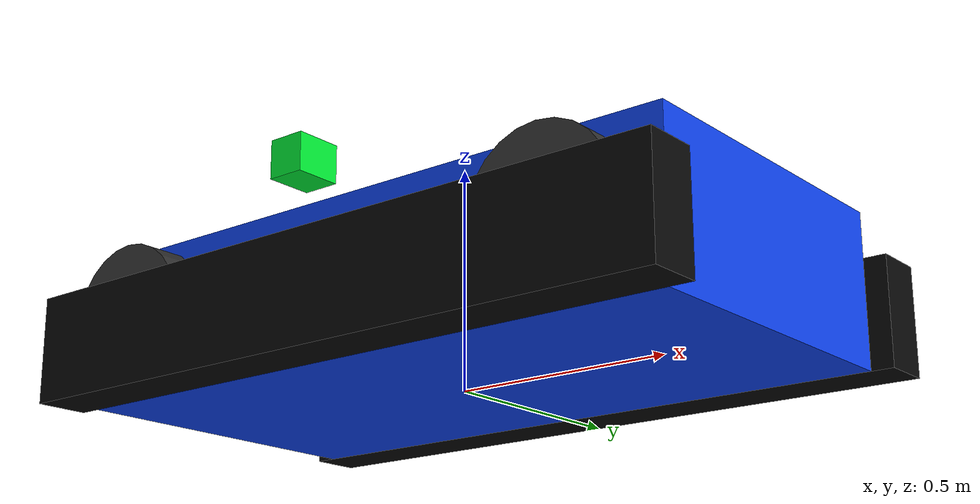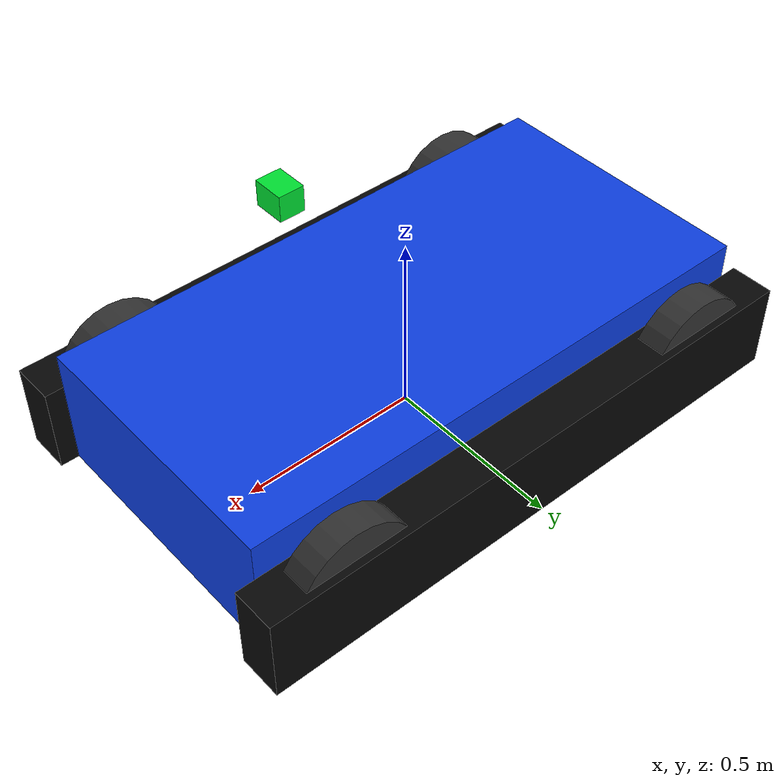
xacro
<?xml version="1.0"?>
<robot name="tracked_canopy_robot" xmlns:xacro="http://www.ros.org/wiki/xacro">
  <!-- Gazebo 中是否显示全部激光射线；只影响显示，不影响 /scan_2d。 -->
  <xacro:arg name="visualize_laser" default="false"/>
  <!--
    实车俯视外形约 1.60 m × 1.00 m。base_width 不含履带，左右履带
    加入后总宽度为 0.76 + 2 × 0.12 = 1.00 m。
  -->
  <xacro:property name="base_length" value="1.50"/>
  <xacro:property name="base_width" value="0.76"/>
  <xacro:property name="base_height" value="0.34"/>
  <xacro:property name="track_length" value="1.60"/>
  <xacro:property name="track_width" value="0.12"/>
  <xacro:property name="track_height" value="0.24"/>
  <xacro:property name="wheel_radius" value="0.16"/>
  <xacro:property name="wheel_width" value="0.08"/>
  <!-- base_footprint 是地面投影坐标系，常用于导航。 -->
  <link name="base_footprint"/>
  <joint name="base_footprint_joint" type="fixed">
    <parent link="base_footprint"/>
    <child link="base_link"/>
    <origin xyz="0 0 ${base_height / 2.0}" rpy="0 0 0"/>
  </joint>
  <!-- 主车体。 -->
  <link name="base_link">
    <inertial>
      <origin xyz="0 0 0"/>
      <mass value="35.0"/>
      <inertia ixx="1.0" ixy="0" ixz="0" iyy="1.4" iyz="0" izz="1.8"/>
    </inertial>
    <visual>
      <origin xyz="0 0 0"/>
      <geometry>
        <box size="${base_length} ${base_width} ${base_height}"/>
      </geometry>
      <material name="body_blue">
        <color rgba="0.05 0.25 0.90 1.0"/>
      </material>
    </visual>
  </link>
  <!-- 左右履带是不参与地面碰撞的视觉外壳。 -->
  <link name="left_track_link">
    <visual>
      <origin xyz="0 0 0"/>
      <geometry>
        <box size="${track_length} ${track_width} ${track_height}"/>
      </geometry>
      <material name="track_dark">
        <color rgba="0.03 0.03 0.03 1.0"/>
      </material>
    </visual>
  </link>
  <joint name="left_track_fixed" type="fixed">
    <parent link="base_link"/>
    <child link="left_track_link"/>
    <origin xyz="0 ${base_width / 2.0 + track_width / 2.0} ${-base_height / 2.0 + track_height / 2.0}" rpy="0 0 0"/>
  </joint>
  <link name="right_track_link">
    <visual>
      <origin xyz="0 0 0"/>
      <geometry>
        <box size="${track_length} ${track_width} ${track_height}"/>
      </geometry>
      <material name="track_dark"/>
    </visual>
  </link>
  <joint name="right_track_fixed" type="fixed">
    <parent link="base_link"/>
    <child link="right_track_link"/>
    <origin xyz="0 ${-(base_width / 2.0 + track_width / 2.0)} ${-base_height / 2.0 + track_height / 2.0}" rpy="0 0 0"/>
  </joint>
  <!-- 四个车轮仅用于外形显示，固定在车体上以避免自由关节抖动。 -->
  <xacro:macro name="display_wheel" params="prefix x y">
    <link name="${prefix}_wheel_link">
      <inertial>
        <origin xyz="0 0 0"/>
        <mass value="1.0"/>
        <inertia ixx="0.01" ixy="0" ixz="0" iyy="0.01" iyz="0" izz="0.01"/>
      </inertial>
      <visual>
        <origin xyz="0 0 0" rpy="1.57079632679 0 0"/>
        <geometry>
          <cylinder radius="${wheel_radius}" length="${wheel_width}"/>
        </geometry>
        <material name="wheel_gray">
          <color rgba="0.20 0.20 0.20 1.0"/>
        </material>
      </visual>
    </link>
    <joint name="${prefix}_wheel_joint" type="fixed">
      <parent link="base_link"/>
      <child link="${prefix}_wheel_link"/>
      <origin xyz="${x} ${y} ${-base_height / 2.0 + wheel_radius}" rpy="0 0 0"/>
    </joint>
  </xacro:macro>
  <xacro:display_wheel prefix="front_left"  x="0.55"  y="${base_width / 2.0 + track_width / 2.0}"/>
  <xacro:display_wheel prefix="front_right" x="0.55"  y="${-(base_width / 2.0 + track_width / 2.0)}"/>
  <xacro:display_wheel prefix="rear_left"   x="-0.55" y="${base_width / 2.0 + track_width / 2.0}"/>
  <xacro:display_wheel prefix="rear_right"  x="-0.55" y="${-(base_width / 2.0 + track_width / 2.0)}"/>
  <!-- 雷达安装架。雷达在右侧，朝向右侧树冠。 -->
  <link name="livox_frame">
    <visual>
      <origin xyz="0 0 0"/>
      <geometry>
        <box size="0.10 0.08 0.08"/>
      </geometry>
      <material name="lidar_green">
        <color rgba="0.0 0.9 0.2 1.0"/>
      </material>
    </visual>
  </link>
  <joint name="livox_joint" type="fixed">
    <parent link="base_link"/>
    <child link="livox_frame"/>
    <origin xyz="0.00 -0.50 0.20" rpy="0 0 -1.57079632679"/>
  </joint>
  <!--
    机器人是平面运动学模型：所有外形都会合并到 base_footprint，
    关闭根链接重力可防止没有承重碰撞体的车辆穿过地面。
  -->
  <gazebo reference="base_footprint">
    <gravity>false</gravity>
  </gazebo>
  <!--
    这一阶段主要验证树冠跟随状态机，因此用平面运动插件精确执行
    /cmd_vel，并发布 /Odometry。这可以避免 Gazebo 轮胎摩擦参数导致的
    履带侧滑偏差；车体、履带和车轮仍按实际尺寸显示，但不参与地面碰撞。
  -->
  <gazebo>
    <plugin name="tracked_planar_drive" filename="libgazebo_ros_planar_move.so">
      <alwaysOn>true</alwaysOn>
      <updateRate>50.0</updateRate>
      <odometryRate>50.0</odometryRate>
      <cmdTimeout>0.5</cmdTimeout>
      <commandTopic>/cmd_vel</commandTopic>
      <odometryTopic>/Odometry</odometryTopic>
      <odometryFrame>odom</odometryFrame>
      <robotBaseFrame>base_link</robotBaseFrame>
      <broadcastTF>true</broadcastTF>
    </plugin>
  </gazebo>
  <!-- Gazebo 2D 激光雷达插件。输出话题是 /scan_2d，frame_id 是 livox_frame。 -->
  <gazebo reference="livox_frame">
    <sensor name="side_lidar" type="ray">
      <always_on>true</always_on>
      <visualize>$(arg visualize_laser)</visualize>
      <update_rate>10</update_rate>
      <ray>
        <scan>
          <horizontal>
            <samples>1800</samples>
            <resolution>1</resolution>
            <min_angle>-3.14159265359</min_angle>
            <max_angle>3.14159265359</max_angle>
          </horizontal>
        </scan>
        <range>
          <min>0.10</min>
          <max>50.00</max>
          <resolution>0.01</resolution>
        </range>
        <noise>
          <type>gaussian</type>
          <mean>0.0</mean>
          <stddev>0.01</stddev>
        </noise>
      </ray>
      <plugin name="gazebo_ros_laser" filename="libgazebo_ros_laser.so">
        <topicName>/scan_2d</topicName>
        <frameName>livox_frame</frameName>
      </plugin>
    </sensor>
  </gazebo>
</robot>
